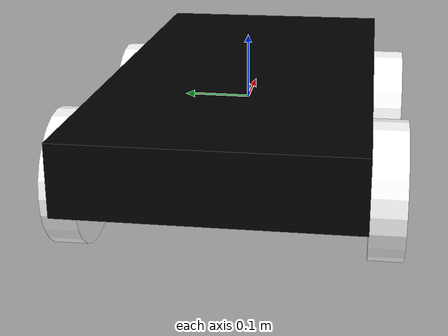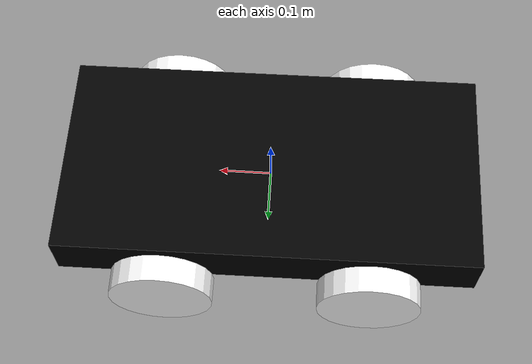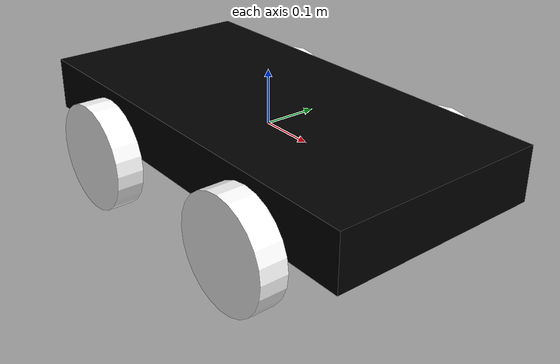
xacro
<?xml version="1.0"?>

<robot name="car" xmlns:xacro="http://www.ros.org/wiki/xacro">

    <xacro:property name="base_x_size" value="0.8" />
    <xacro:property name="base_y_size" value="0.4"/>
    <xacro:property name="base_z_size" value="0.1"/>
    <xacro:property name="mass" value="3"/>
    <xacro:property name="offset" value="0.07"/>
    <xacro:property name="PI" value="3.1415926535897931"/>

    <xacro:include filename="$(find car_description)/urdf/materials.xacro" />
    <xacro:include filename="$(find car_description)/urdf/car.gazebo" />

    <link name="base_link">
        <visual>
            <origin xyz="0 0 0" rpy="0 0 0"/>
            <geometry>
                <box size="${base_x_size} ${base_y_size} ${base_z_size}"/>
            </geometry>
            <material name="black"/>
        </visual>

        <collision>
            <origin xyz="0 0 0" rpy="0 0 0"/>
            <geometry>
                <box size="${base_x_size} ${base_y_size} ${base_z_size}"/>
            </geometry>
        </collision>

        <inertial>
            <origin xyz="0 0 0" rpy="0 0 0"/>
            <mass value="${mass}"/>
            <inertia
                ixx="${mass / 12.0 * (base_y_size*base_y_size+base_z_size*base_z_size)}" ixy="0.0" ixz="0.0"
                iyy="${mass / 12.0 * (base_x_size*base_x_size+base_z_size*base_z_size)}" iyz="0.0"
                izz="${mass / 12.0 * (base_x_size*base_x_size+base_y_size*base_y_size)}"
                />
        </inertial>
    </link>

    <joint name="front_l_wheel_joint" type="continuous">
        <parent link="base_link"/>
        <child link="front_l_wheel"/>
        <origin xyz="${base_x_size/4} ${base_y_size/2} ${-offset}" rpy="0 0 0"/>
        <axis xyz="0 1 0"/>
    </joint>

    <link name="front_l_wheel">
        <visual>
            <origin xyz="0 0.025 0" rpy="${PI/2} 0 0"/>
            <geometry>
                <cylinder radius="0.1" length="0.05"/>
            </geometry>
            <material name="white"/>
        </visual>
        <collision>
            <origin xyz="0 0.025 0" rpy="${PI/2} 0 0"/>
            <geometry>
                <cylinder radius="0.1" length="0.05"/>
            </geometry>
        </collision>

        <inertial>
            <origin xyz="0 0.025 0" rpy="${PI/2} 0 0" />
            <mass value="0.01" />
            <inertia
              ixx="0.01" ixy="0.0" ixz="0.0"
              iyy="0.01" iyz="0.0"
              izz="0.01" />
        </inertial>
    </link>

    <joint name="front_r_wheel_joint" type="continuous">
        <parent link="base_link"/>
        <child link="front_r_wheel"/>
        <origin xyz="${base_x_size/4} ${-base_y_size/2} ${-offset}" rpy="0 0 0"/>
        <axis xyz="0 1 0"/>
    </joint>

    <link name="front_r_wheel">
        <visual>
            <origin xyz="0 -0.025 0" rpy="${PI/2} 0 0"/>
            <geometry>
                <cylinder radius="0.1" length="0.05"/>
            </geometry>
            <material name="white"/>
        </visual>
        <collision>
            <origin xyz="0 -0.025 0" rpy="${PI/2} 0 0"/>
            <geometry>
                <cylinder radius="0.1" length="0.05"/>
            </geometry>
        </collision>
        <inertial>
            <origin xyz="0 -0.025 0" rpy="${PI/2} 0 0" />
            <mass value="0.01" />
            <inertia
              ixx="0.01" ixy="0.0" ixz="0.0"
              iyy="0.01" iyz="0.0"
              izz="0.01" />
        </inertial>
    </link>

    <joint name="back_l_wheel_joint" type="continuous">
        <parent link="base_link"/>
        <child link="back_l_wheel"/>
        <origin xyz="${-base_x_size/4} ${base_y_size/2} ${-offset}" rpy="0 0 0"/>
        <axis xyz="0 1 0"/>
    </joint>

    <link name="back_l_wheel">
        <visual>
            <origin xyz="0 0.025 0" rpy="${PI/2} 0 0"/>
            <geometry>
                <cylinder radius="0.1" length="0.05"/>
            </geometry>
            <material name="white"/>
        </visual>

        <collision>
            <origin xyz="0 0.025 0" rpy="${PI/2} 0 0"/>
            <geometry>
                <cylinder radius="0.1" length="0.05"/>
            </geometry>
        </collision>

        <inertial>
            <origin xyz="0 0.025 0" rpy="${PI/2} 0 0" />
            <mass value="0.01" />
            <inertia
              ixx="0.01" ixy="0.0" ixz="0.0"
              iyy="0.01" iyz="0.0"
              izz="0.01" />
        </inertial>
    </link>

    <joint name="back_r_wheel_joint" type="continuous">
        <parent link="base_link"/>
        <child link="back_r_wheel"/>
        <origin xyz="${-base_x_size/4} ${-base_y_size/2} ${-offset}" rpy="0 0 0"/>
        <axis xyz="0 1 0"/>
    </joint>

    <link name="back_r_wheel">
        <visual>
            <origin xyz="0 -0.025 0" rpy="${PI/2} 0 0"/>
            <geometry>
                <cylinder radius="0.1" length="0.05"/>
            </geometry>
            <material name="white"/>
        </visual>
        <collision>
            <origin xyz="0 -0.025 0" rpy="${PI/2} 0 0"/>
            <geometry>
                <cylinder radius="0.1" length="0.05"/>
            </geometry>
        </collision>
        <inertial>
            <origin xyz="0 -0.025 0" rpy="${PI/2} 0 0" />
            <mass value="0.01" />
            <inertia
              ixx="0.01" ixy="0.0" ixz="0.0"
              iyy="0.01" iyz="0.0"
              izz="0.01" />
        </inertial>
    </link>

    <transmission name="front_l_wheel_trans" type="SimpleTransmission">
        <type>transmission_interface/SimpleTransmission</type>
        <actuator name="front_l_wheel_motor">
            <mechanicalReduction>1</mechanicalReduction>
        </actuator>
        <joint name="front_l_wheel_joint">
            <hardwareInterface>hardware_interface/VelocityJointInterface</hardwareInterface>
        </joint>
    </transmission>

    <transmission name="front_r_wheel_trans" type="SimpleTransmission">
        <type>transmission_interface/SimpleTransmission</type>
        <actuator name="front_r_wheel_motor">
            <mechanicalReduction>1</mechanicalReduction>
        </actuator>
        <joint name="front_r_wheel_joint">
            <hardwareInterface>hardware_interface/VelocityJointInterface</hardwareInterface>
        </joint>
    </transmission>

    <transmission name="back_l_wheel_trans" type="SimpleTransmission">
        <type>transmission_interface/SimpleTransmission</type>
        <actuator name="back_l_wheel_motor">
            <mechanicalReduction>1</mechanicalReduction>
        </actuator>
        <joint name="back_l_wheel_joint">
            <hardwareInterface>hardware_interface/VelocityJointInterface</hardwareInterface>
        </joint>
    </transmission>

    <transmission name="back_r_wheel_trans" type="SimpleTransmission">
        <type>transmission_interface/SimpleTransmission</type>
        <actuator name="back_r_wheel_motor">
            <mechanicalReduction>1</mechanicalReduction>
        </actuator>
        <joint name="back_r_wheel_joint">
            <hardwareInterface>hardware_interface/VelocityJointInterface</hardwareInterface>
        </joint>
    </transmission>

</robot>

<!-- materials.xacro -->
<robot>
    <material name="black">
        <color rgba="0.0 0.0 0.0 1.0"/>
      </material>

      <material name="blue">
        <color rgba="0.0 0.0 0.8 1.0"/>
      </material>

      <material name="green">
        <color rgba="0.0 0.8 0.0 1.0"/>
      </material>

      <material name="grey">
        <color rgba="0.2 0.2 0.2 1.0"/>
      </material>

      <material name="orange">
        <color rgba="${255/255} ${108/255} ${10/255} 1.0"/>
      </material>

      <material name="brown">
        <color rgba="${222/255} ${207/255} ${195/255} 1.0"/>
      </material>

      <material name="red">
        <color rgba="0.8 0.0 0.0 1.0"/>
      </material>

      <material name="white">
        <color rgba="1.0 1.0 1.0 1.0"/>
      </material>
</robot>
